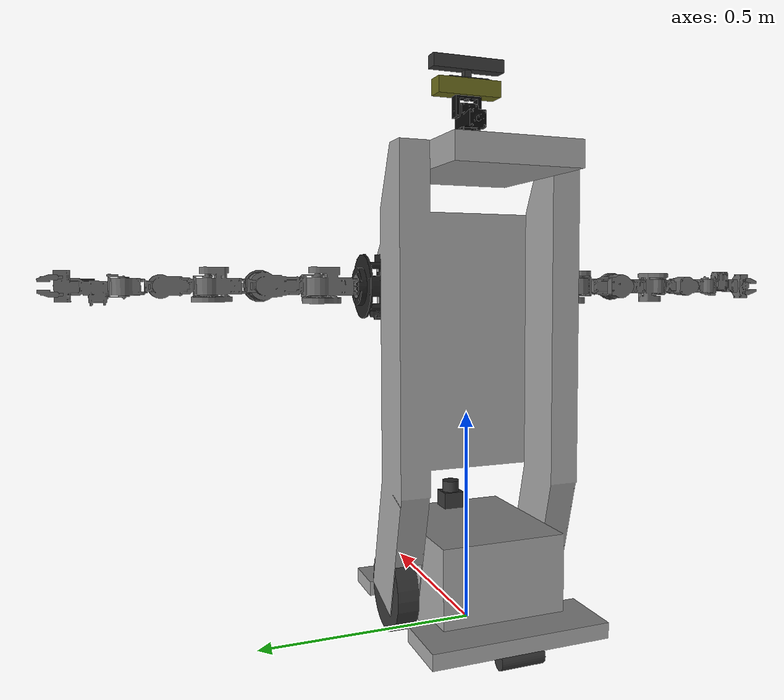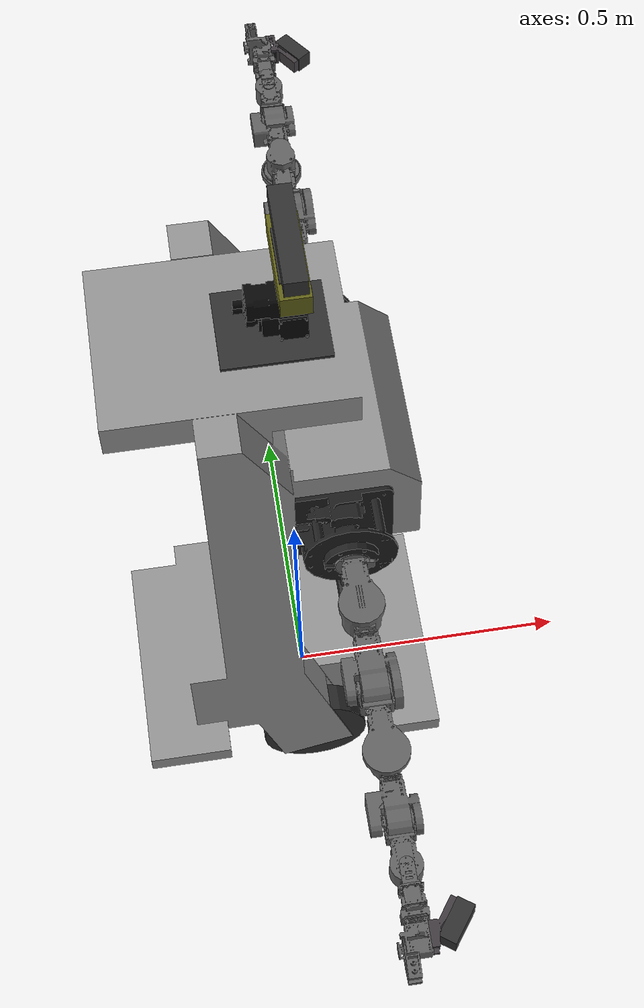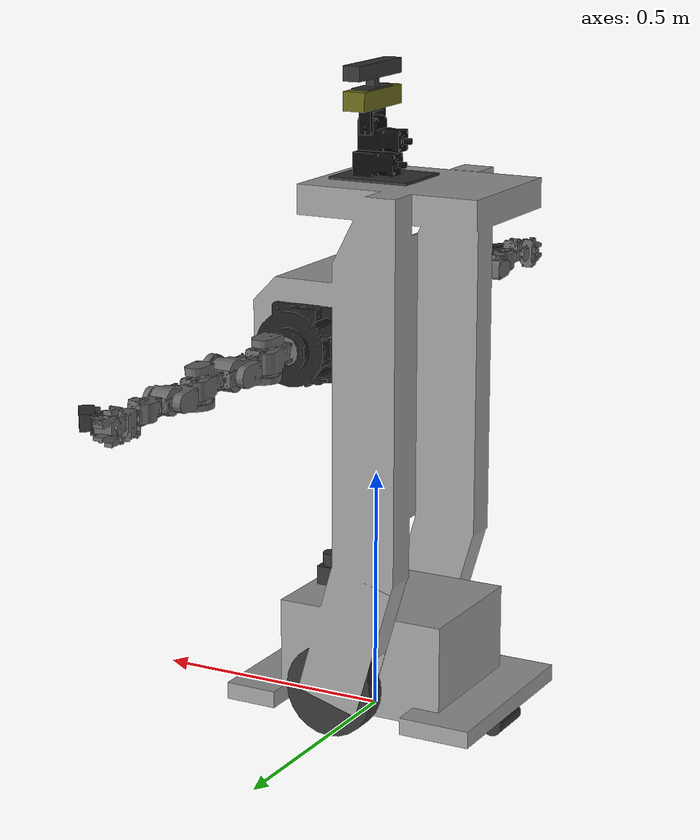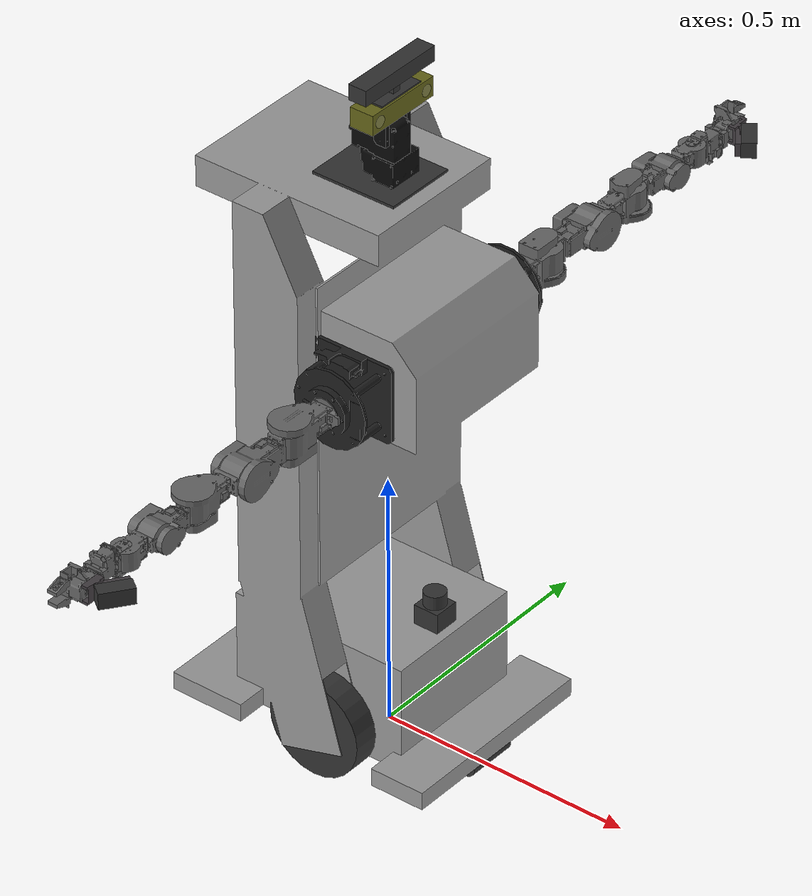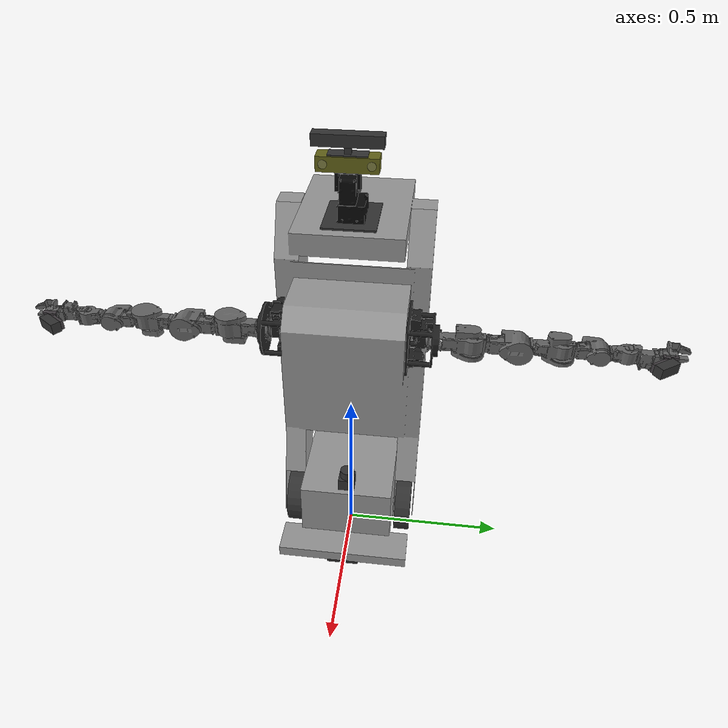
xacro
<?xml version="1.0"?>
<robot xmlns:xacro="http://www.ros.org/wiki/xacro" name="phoebe">
  <xacro:include filename="$(find cyton_gamma_1500_description)/urdf/cyton_gamma_1500_macros.urdf.xacro" />
  <xacro:include filename="$(find dp_ptu_46_description)/dp_ptu_46_macros.urdf.xacro" />
  <xacro:include filename="$(find phoebe_description)/urdf/phoebe.gazebo" />

  <link name="base_footprint"/>

  <joint name="base_joint" type="fixed">
      <origin xyz="0 0 0.0012" rpy="0 0 0" />
      <parent link="base_footprint"/>
      <child link="base_link" />
  </joint>

  <link name="base_link">
    <inertial>
      <origin rpy="0 0 0" xyz="-0.040872 0.0 0.56"/>
      <mass value="12"/>
      <!-- inretia tensor for solid cuboid: m=12, h=1.12, d=0.49, w=0.41 -->
      <inertia ixx="1.4225" ixy="0" ixz="0" iyy="1.4945" iyz="0" izz="0.4082"/>
    </inertial>
	<visual>
      <origin xyz="0 0 0" rpy="0 0 0"/>
      <geometry>
        <mesh filename="package://phoebe_description/meshes/phoebe.dae"/>
      </geometry>
    </visual>
    <collision>
      <origin xyz="0 0 0" rpy="0 0 0"/>
      <geometry>
        <mesh filename="package://phoebe_description/meshes/phoebe.dae"/>
      </geometry>
    </collision>
  </link>

  <joint name="wheel_rear_joint" type="continuous">
    <parent link="base_link"/>
    <child link="wheel_rear"/>
    <origin rpy="0 0 0" xyz="-0.29 0.0 0.020"/>
	<axis rpy="0 0 0" xyz="0 1 0"/>
    <limit effort="10000" velocity="1000"/>
    <joint_properties damping="1.0" friction="1.0"/>

  </joint>

  <link name="wheel_rear">
    <inertial>
      <!--origin rpy="0 0 0" xyz="0 0 0"/-->
	  <origin rpy="0 1.5708 1.5708" xyz="0 0 0"/>
      <mass value="0.25"/>
      <!-- inretia tensor for solid cylinder: m=0.5, h=0.05, r=0.095 -->
      <inertia ixx="1.232291667e-03" ixy="0" ixz="0" iyy="1.232291667e-03" iyz="0" izz="2.25625e-03"/>
    </inertial>
    <visual>
      <origin rpy="0 1.5707 1.5707" xyz="0 0 0"/>
      <geometry>
        <cylinder length="0.1" radius="0.02"/>
      </geometry>
      <material name="blackish">
        <color rgba="0.2 0.2 0.2 1"/>
      </material>
    </visual>
    <collision>
      <origin rpy="0 1.5707 1.5707" xyz="0 0 0"/>
      <geometry>
        <cylinder length="0.1" radius="0.02"/>
      </geometry>
    </collision>
  </link>

  <joint name="wheel_front_joint" type="continuous">
    <parent link="base_link"/>
    <child link="wheel_front"/>
    <origin rpy="0 0 0" xyz="0.206 0 0.020"/>
	<axis rpy="0 0 0" xyz="0 1 0"/>
    <limit effort="10000" velocity="1000"/>
    <joint_properties damping="1.0" friction="1.0"/>
  </joint>

  <link name="wheel_front">
    <inertial>
      <!--origin rpy="0 0 0" xyz="0 0 0"/-->
	  <origin rpy="0 1.5708 1.5708" xyz="0 0 0"/>
      <mass value="0.25"/>

      <inertia ixx="1.232291667e-03" ixy="0" ixz="0" iyy="1.232291667e-03" iyz="0" izz="2.25625e-03"/>
    </inertial>
    <visual>
     <origin rpy="0 1.5707 1.5707" xyz="0 0 0"/>
     <geometry>
        <cylinder length="0.1" radius="0.02"/>
      </geometry>
      <material name="blackish"/>
    </visual>
    <collision>
      <origin rpy="0 1.5707 1.5707" xyz="0 0 0"/>
      <geometry>
        <cylinder length="0.1" radius="0.02"/>
      </geometry>
    </collision>
  </link>

  <joint name="wheel_left_joint" type="continuous">
    <parent link="base_link"/>
    <child link="wheel_left"/>
	<!--origin rpy="1.570796 0 0" xyz="0.0 0.18 0.095"/-->
    <origin rpy="0 0 0" xyz="0.0 0.18 0.095"/>
    <!--axis xyz="0 0 1"/-->
	<axis xyz="0 1 0"/>
	<limit effort="10000" velocity="1000"/>
    <joint_properties damping="1.0" friction="1.0"/>
  </joint>

  <link name="wheel_left">
    <inertial>
      <!--origin rpy="0 0 0" xyz="0 0 0"/-->
	  <origin rpy="0 1.5708 1.5708" xyz="0 0 0"/>
      <mass value="0.5"/>
      <!-- inretia tensor for solid cylinder: m=0.5, h=0.05, r=0.095 -->
      <inertia ixx="1.232291667e-03" ixy="0" ixz="0" iyy="1.232291667e-03" iyz="0" izz="2.25625e-03"/>
    </inertial>
    <visual>
      <!--origin rpy="0 0 0" xyz="0 0 0"/-->
	  <origin rpy="0 1.5708 1.5708" xyz="0 0 0"/>
      <geometry>
        <cylinder length="0.05" radius="0.095"/>
      </geometry>
      <material name="blackish">
        <color rgba="0.2 0.2 0.2 1"/>
      </material>
    </visual>
    <collision>
      <!--origin rpy="0 0 0" xyz="0 0 0"/-->
	  <origin rpy="0 1.5707 1.5707" xyz="0 0 0"/>
      <geometry>
        <cylinder length="0.05" radius="0.095"/>
      </geometry>
    </collision>
  </link>

  <joint name="wheel_right_joint" type="continuous">
    <parent link="base_link"/>
    <child link="wheel_right"/>
    <!--origin rpy="1.570796 0 0" xyz="0.0 -0.18 0.095"/-->
	<origin rpy="0 0 0" xyz="0.0 -0.18 0.095"/>
    <!--axis xyz="0 0 1"/-->
	<axis xyz="0 1 0"/>
	<limit effort="10000" velocity="1000"/>
    <joint_properties damping="1.0" friction="1.0"/>
  </joint>
  <link name="wheel_right">
    <inertial>
      <!--origin rpy="0 0 0" xyz="0 0 0"/-->
	  <origin rpy="0 1.5708 1.5708" xyz="0 0 0"/>
      <mass value="0.5"/>
      <!-- inretia tensor for solid cylinder: m=0.5, h=0.05, r=0.095 -->
      <inertia ixx="1.232291667e-03" ixy="0" ixz="0" iyy="1.232291667e-03" iyz="0" izz="2.25625e-03"/>
    </inertial>
    <visual>
      <!--origin rpy="0 0 0" xyz="0 0 0"/-->
	  <origin rpy="0 1.5708 1.5708" xyz="0 0 0"/>
      <geometry>
        <cylinder length="0.05" radius="0.095"/>
      </geometry>
      <material name="blackish"/>
    </visual>
    <collision>
      <!--origin rpy="0 0 0" xyz="0 0 0"/-->
	  <origin rpy="0 1.5708 1.5708" xyz="0 0 0"/>
      <geometry>
        <cylinder length="0.05" radius="0.095"/>
      </geometry>
    </collision>
  </link>

  <!-- Cyton Gamma 1500 models -->
  <!-- Right arm -->
  <joint name="right_arm_joint" type="fixed">
    <parent link="base_link" />
    <child link="right_arm_base_link" />
    <origin xyz="0.067 -0.162 0.8" rpy="1.5708 -1.5708 0" />
  </joint>
 <xacro:cyton_gamma_1500 prefix="right_arm_" virtual_ee="true" />

  <!-- Left arm -->
  <joint name="left_arm_joint" type="fixed">
    <parent link="base_link" />
    <child link="left_arm_base_link" />
    <origin xyz="0.067 0.162 0.8" rpy="-1.5708 1.5708 0" />
  </joint>
  <xacro:cyton_gamma_1500 prefix="left_arm_" virtual_ee="true" />

  <!-- PTU -->
  <joint name="ptu_joint" type="fixed">
    <parent link="base_link" />
    <child link="ptu_base_plate_link" />
    <origin xyz="0.02 0 1.1075" rpy="0 0 0" />
  </joint>
  <xacro:dp_ptu_46 prefix="" plate="true" thickness="0.005" />

  <!-- Hokuyo lidar -->
  <joint name="hokuyo_base_joint" type="fixed">
    <parent link="base_link" />
    <child link="hokuyo_link" />
    <origin xyz="0.1 0 0.3" rpy="0 0 0" />
  </joint>

  <link name="hokuyo_link">
    <inertial>
      <origin rpy="0 0 0" xyz="0 0 -0.02"/>
      <mass value="0.13"/>
      <!-- inretia tensor for solid cuboid: m=0.13, h=0.07, w=0.05, d=0.05 -->
      <inertia ixx="8.0167e-05" ixy="0" ixz="0" iyy="8.0167e-05" iyz="0" izz="5.4167e-05"/>
    </inertial>
	<visual>
      <origin xyz="0 0 0" rpy="0 0 0"/>
      <geometry>
        <cylinder length="0.0265" radius="0.021" />
      </geometry>
      <material name="blackish" />
    </visual>
    <visual>
      <origin xyz="0 0 -0.034" rpy="0 0 0"/>
      <geometry>
        <box size="0.05 0.05 0.041"/>
      </geometry>
      <material name="blackish" />
    </visual>
    <collision>
      <origin xyz="0 0 0" rpy="0 0 0"/>
      <geometry>
        <cylinder length="0.0265" radius="0.021" />
      </geometry>
    </collision>
    <collision>
      <origin xyz="0 0 -0.047" rpy="0 0 0"/>
      <geometry>
        <box size="0.05 0.05 0.041"/>
      </geometry>
    </collision>
  </link>

  <!-- Bumblebee 2 -->
  <joint name="bumblebee_joint" type="fixed">
    <parent link="ptu_mount_link" />
    <child link="bumblebee_link" />
    <origin xyz="0 0 0.058" rpy="0 0 0" />
  </joint>

  <link name="bumblebee_link">
    <inertial>
      <origin rpy="0 0 0" xyz="0 0 0"/>
      <mass value="0.342"/>
      <!-- inretia tensor for solid cuboid: m=0.342, h=0.036, w=0.157, d=0.0474 -->
      <inertia ixx="7.3943e-04" ixy="0" ixz="0" iyy="1.0096e-04" iyz="0" izz="7.6653e-04"/>
    </inertial>
	<visual>
      <origin xyz="0 0 0" rpy="0 0 0"/>
      <geometry>
        <box size="0.047 0.157 0.038"/>
      </geometry>
      <material name="golden">
        <color rgba="0.4 0.4 0.1 1" />
      </material>
    </visual>
  </link>

  <joint name="bumblebee_cameras_joint" type="fixed">
    <parent link="bumblebee_link" />
    <child link="bumblebee_cameras_link" />
    <origin xyz="0 0 0.0" rpy="0 0 0" />
  </joint>

  <link name="bumblebee_cameras_link">
    <visual>
      <origin xyz="0.024 0.06 0" rpy="0 1.5708 0"/>
      <geometry>
        <cylinder length="0.001" radius="0.011" />
      </geometry>
      <material name="glass">
        <color rgba="1 1 1 0.2" />
      </material>
    </visual>
    <visual>
      <origin xyz="0.024 -0.06 0" rpy="0 1.5708 0"/>
      <geometry>
        <cylinder length="0.001" radius="0.011" />
      </geometry>
      <material name="glass" />
    </visual>
  </link>

  <!-- Asus Xtion Pro Live -->
  <joint name="xtion_joint" type="fixed">
    <parent link="bumblebee_link" />
    <child link="xtion_link" />
    <origin xyz="0 0 0.055" rpy="0 0 0" />
  </joint>

  <link name="xtion_link">
    <inertial>
      <origin rpy="0 0 0" xyz="0 0 0"/>
      <mass value="0.54"/>
      <!-- inretia tensor for solid cuboid: m=0.54, h=0.034, w=0.18, d=0.034 -->
      <inertia ixx="1.51e-03" ixy="0" ixz="0" iyy="1.0404e-04" iyz="0" izz="1.51e-03"/>
    </inertial>
	<visual>
      <origin xyz="0 0 0" rpy="0 0 0"/>
      <geometry>
        <box size="0.036 0.178 0.03"/>
      </geometry>
      <material name="blackish" />
    </visual>
    <visual>
      <origin xyz="0 0 -0.025" rpy="0 0 0"/>
      <geometry>
        <box size="0.02 0.017 0.02"/>
      </geometry>
      <material name="blackish" />
    </visual>
    <visual>
      <origin xyz="0 0 -0.035" rpy="0 0 0"/>
      <geometry>
        <box size="0.04 0.1 0.004"/>
      </geometry>
      <material name="blackish" />
    </visual>
  </link>

  <joint name = "xtion_optical_frame_joint" type="fixed">
    <parent link="xtion_link"/>
    <child link="xtion_optical_frame"/>
    <origin rpy="-1.57 0 -1.57" xyz="0 0 0"/>
  </joint>

  <link name="xtion_optical_frame" >
 </link>

  <joint name = "left_optical_frame_joint" type="fixed">
    <parent link="left_arm_camera"/>
    <child link="left_optical_frame"/>
    <origin rpy="0 -1.5708  0" xyz="0 0 0"/>
  </joint>

  <link name="left_optical_frame" >
 </link>

  <joint name = "right_optical_frame_joint" type="fixed">
    <parent link="right_arm_camera"/>
    <child link="right_optical_frame"/>
    <origin rpy="0  -1.5708 3.14" xyz="0 0 0"/>
  </joint>

  <link name="right_optical_frame" >
 </link>

</robot>

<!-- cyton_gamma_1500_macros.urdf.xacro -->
<robot xmlns:xacro="http://www.ros.org/wiki/xacro" name="cyton_gamma_1500">

  <xacro:macro name="base_footprint" params="prefix">
    <link name="base_footprint">
      <visual>
        <origin xyz="0 0 0" rpy="0 0 0"/>
        <geometry>
          <sphere radius="0.001" />
        </geometry>
        <material name="white">
          <color rgba="1 1 1 1"/>
        </material>
      </visual>
    </link>

    <joint name="base_joint" type="fixed">
      <parent link="base_footprint" />
      <child link="${prefix}base_link" />
      <origin xyz="0.0 0.0 0.0" rpy="0 0 0" />
    </joint>
  </xacro:macro>

  <xacro:macro name="cyton_gamma_1500" params="prefix virtual_ee">
    <link name="${prefix}base_link">
      <visual>
        <origin xyz="0 0 0" rpy="0 0 0"/>
        <geometry>
          <mesh filename="package://cyton_gamma_1500_description/meshes/base.dae"/>
        </geometry>
      </visual>

	  <inertial>
		  <origin rpy="0 0 0" xyz="0.0 0 0"/>
		  <mass value="0.478571"/>
		  <!-- inretia tensor for solid cuboid: m=0.478571, w=0.177, h=0.074, d=0.150 -->
		  <inertia ixx="1.47e-03" ixy="0" ixz="0" iyy="2.15e-03" iyz="0" izz="1.12e-03"/>
	  </inertial>
      <collision>
        <!--origin xyz="0 0.0115 0.047"/-->
		<origin xyz="0 0 0" rpy="0 0 0"/>
        <geometry>
		  <!--box size="0.154 0.177 0.094"/-->
          <box size="0.154 0.16 0.075"/>
        </geometry>
      </collision>
    </link>

    <joint name="${prefix}shoulder_roll_joint" type="revolute">
      <parent link="${prefix}base_link" />
      <child link="${prefix}shoulder_roll" />
      <origin xyz="0 0 0.05315" rpy="0 0 0" />
      <limit lower="-2.618" upper="2.618" effort="100.0" velocity="1.0" />
      <axis xyz="0 0 1" />
    </joint>

    <link name="${prefix}shoulder_roll">
      <visual>
        <origin xyz="0 0 0" rpy="1.5708 0 0.384"/>
        <geometry>
          <mesh filename="package://cyton_gamma_1500_description/meshes/shoulder_roll.dae"/>
        </geometry>
      </visual>
      <collision>
        <origin xyz="0.0 0.0 0.0"/>
        <geometry>
          <!--box size="0.09829 0.18143 0.08392"/-->
		  <box size="0.068 0.10 0.065"/>
        </geometry>
      </collision>
	  <inertial>
		  <origin rpy="0 0 0" xyz="0 0 0.12"/>
		  <mass value="0.468571"/>
		  <!-- inretia tensor for solid cylinder: m=0.468571, h=0.09248, r=0.044737 -->
		  <inertia ixx="4.7e-04" ixy="0" ixz="0" iyy="5.7e-04" iyz="0" izz="5.7e-04"/>
       </inertial>

    </link>

    <joint name="${prefix}shoulder_pitch_joint" type="revolute">
      <parent link="${prefix}shoulder_roll" />
      <child link="${prefix}shoulder_pitch" />
      <origin xyz="0.0205 0 0.12435" rpy="0 0 0" />
      <limit lower="-1.8326" upper="1.8326" effort="100.0" velocity="1.0" />
      <axis xyz="1 0 0" />
    </joint>

	<transmission name="${prefix}tran1">
    <type>transmission_interface/SimpleTransmission</type>
    <joint name="${prefix}shoulder_roll_joint">
      <hardwareInterface>hardware_interface/PositionJointInterface</hardwareInterface>
    </joint>
    <actuator name="${prefix}motor1">
      <hardwareInterface>hardware_interface/PositionJointInterface</hardwareInterface>
    </actuator>
  </transmission>

    <link name="${prefix}shoulder_pitch">
      <visual>
        <origin xyz="0 0 0" rpy="1.5708 0 0" />
        <geometry>
          <mesh filename="package://cyton_gamma_1500_description/meshes/shoulder_pitch.dae"/>
        </geometry>
      </visual>
      <collision>
      <origin xyz="-0.02 0.0 0.0"/>
      <geometry>
	<sphere radius="0.055"/>
        <!--box size="0.098 0.08 0.11"/-->
      </geometry>
    </collision>
    <inertial>
      <!--origin rpy="0 0 0" xyz="-0.0214 0 0.117"/-->
	  <origin rpy="0 0 0" xyz="0 0 0"/>
      <mass value="0.4285714"/>
      <!-- inretia tensor for solid cylinder: m=0.4285714, h=0.09248, r=0.04204 -->
      <inertia ixx="4.9e-04" ixy="0" ixz="0" iyy="3.8e-04" iyz="0" izz="4.9e-04"/>
    </inertial>
    </link>

    <joint name="${prefix}shoulder_yaw_joint" type="revolute">
      <parent link="${prefix}shoulder_pitch" />
      <child link="${prefix}shoulder_yaw" />
      <origin xyz="-0.0215 -0.0205 0.1255" rpy="0 0 0" />
      <limit lower="-1.8326" upper="1.8326" effort="100.0" velocity="1.0" />
      <axis xyz="0 -1 0" />
    </joint>

	<transmission name="${prefix}tran2">
      <type>transmission_interface/SimpleTransmission</type>
      <joint name="${prefix}shoulder_pitch_joint">
        <hardwareInterface>hardware_interface/PositionJointInterface</hardwareInterface>
      </joint>
      <actuator name="${prefix}motor2">
        <hardwareInterface>hardware_interface/PositionJointInterface</hardwareInterface>
      </actuator>
    </transmission>

    <link name="${prefix}shoulder_yaw">
      <visual>
        <origin xyz="0 0 0.0" rpy="1.5708 0 -1.5708" />
        <geometry>
          <mesh filename="package://cyton_gamma_1500_description/meshes/shoulder_yaw.dae"/>
        </geometry>
      </visual>
      <collision>
		<origin xyz=" -0.002 0.02 -0.01"/>
		<geometry>
			<sphere radius="0.055"/>
			<!--box size="0.08 0.1 0.11"/-->
		</geometry>
	  </collision>
      <inertial>
		  <!--origin rpy="0 0 0" xyz="-0.002 0.021 0.1135"/-->
		  <origin rpy="0 0 0" xyz="0 0 0"/>
		  <mass value="0.408571"/>
		  <!-- inretia tensor for solid cylinder: m=0.408571, h=0.084081, r=0.036785 -->
		  <inertia ixx="2.8e-04" ixy="0" ixz="0" iyy="3.8e-04" iyz="0" izz="3.8e-04"/>
       </inertial>
    </link>

	<transmission name="${prefix}tran3">
    <type>transmission_interface/SimpleTransmission</type>
    <joint name="${prefix}shoulder_yaw_joint">
      <hardwareInterface>hardware_interface/PositionJointInterface</hardwareInterface>
    </joint>
    <actuator name="${prefix}motor3">
      <hardwareInterface>hardware_interface/PositionJointInterface</hardwareInterface>
    </actuator>
  </transmission>

    <joint name="${prefix}elbow_pitch_joint" type="revolute">
      <parent link="${prefix}shoulder_yaw" />
      <child link="${prefix}elbow_pitch" />
      <origin xyz="0.018 0.0206 0.1158" rpy="0 0 0" />
      <limit lower="-1.8326" upper="1.8326" effort="100.0" velocity="1.0" />
      <axis xyz="1 0 0" />
    </joint>

    <link name="${prefix}elbow_pitch">
      <visual>
        <origin xyz="0 0 0" rpy="1.5708 0 3.1416" />
        <geometry>
          <mesh filename="package://cyton_gamma_1500_description/meshes/elbow_pitch.dae"/>
        </geometry>
      </visual>
      <collision>
      <origin xyz="-0.022 0.0 -0.006"/>
      <geometry>
		<sphere radius="0.055"/>
        <!--box size="0.09 0.1 0.11"/-->
      </geometry>
      </collision>
      <inertial>
		  <origin rpy="0 0 0" xyz="0 0 0"/>
		  <!--origin rpy="0 0 0" xyz="-0.0176 0.001 0.095"/-->
		  <mass value="0.388671"/>
		  <!-- inretia tensor for solid cylinder: m=0.388671, h=0.06705, r=0.028975 -->
		  <inertia ixx="2.3e-04" ixy="0" ixz="0" iyy="1.6e-04" iyz="0" izz="2.3e-04"/>
       </inertial>
    </link>

	<transmission name="${prefix}tran4">
		<type>transmission_interface/SimpleTransmission</type>
		<joint name="${prefix}elbow_pitch_joint">
			<hardwareInterface>hardware_interface/PositionJointInterface</hardwareInterface>
		</joint>
		<actuator name="${prefix}motor4">
			<hardwareInterface>hardware_interface/PositionJointInterface</hardwareInterface>
		</actuator>
	</transmission>

    <joint name="${prefix}elbow_yaw_joint" type="revolute">
      <parent link="${prefix}elbow_pitch" />
      <child link="${prefix}elbow_yaw" />
      <origin xyz="-0.0171 -0.018 0.09746" rpy="0 0 0" />
      <limit lower="-1.8326" upper="1.8326" effort="100.0" velocity="1.0" />
      <axis xyz="0 -1 0" />
    </joint>

    <link name="${prefix}elbow_yaw">
      <visual>
        <origin xyz="0 0 0" rpy="1.5708 0 1.5708" />
        <geometry>
          <mesh filename="package://cyton_gamma_1500_description/meshes/elbow_yaw.dae"/>
        </geometry>
      </visual>
      <collision>
		<origin xyz="0.0 0.025 0.0"/>
		<geometry>
			<sphere radius="0.05"/>
		</geometry>
		</collision>
		<inertial>
		  <!--origin rpy="0 0 0" xyz="0 0.018 0.073"/-->
		  <origin rpy="0 0 0" xyz="0 0 0"/>
		  <mass value="0.368871"/>
		  <!-- inretia tensor for solid cylinder: m=0.368871, h=0.043602, r=0.024071 -->
		  <inertia ixx="1.0686e-04" ixy="0" ixz="0" iyy="1.1187e-04" iyz="0" izz="1.1187e-04"/>
		</inertial>
    </link>

	<transmission name="${prefix}tran5">
    <type>transmission_interface/SimpleTransmission</type>
    <joint name="${prefix}elbow_yaw_joint">
      <hardwareInterface>hardware_interface/PositionJointInterface</hardwareInterface>
    </joint>
    <actuator name="${prefix}motor5">
      <hardwareInterface>hardware_interface/PositionJointInterface</hardwareInterface>
    </actuator>
  </transmission>

    <joint name="${prefix}wrist_pitch_joint" type="revolute">
      <parent link="${prefix}elbow_yaw" />
      <child link="${prefix}wrist_pitch" />
      <origin xyz="0.02626 0.018 0.0718" rpy="0 0 0" />
      <limit lower="-1.8326" upper="1.8326" effort="100.0" velocity="1.0" />
      <axis xyz="-1 0 0" />
    </joint>

    <link name="${prefix}wrist_pitch">
      <visual>
        <origin xyz="0 0 0" rpy="1.5708 0 1.5708" />
        <geometry>
          <mesh filename="package://cyton_gamma_1500_description/meshes/wrist_pitch.dae"/>
        </geometry>
      </visual>
      <collision>
		<origin xyz="-0.02 0.0 0.0"/>
		<geometry>
			<box size="0.07 0.06 0.11"/>
		</geometry>
		</collision>
		<inertial>
		  <!--origin rpy="0 0 0" xyz="-0.027 -0.0005 0.028"/-->
		  <origin rpy="0 0 0" xyz="0 0 0"/>
	  <mass value="0.2"/>
		<!-- inretia tensor for solid cuboid: m=0.008, h=0.045602, w=0.0218, d=0.005 -->
		<inertia ixx="8.337e-06" ixy="0" ixz="0" iyy="3.507e-05" iyz="0" izz="4.258e-05"/>
		</inertial>
    </link>
	<transmission name="${prefix}tran6">
		<type>transmission_interface/SimpleTransmission</type>
		<joint name="${prefix}wrist_pitch_joint">
			<hardwareInterface>hardware_interface/PositionJointInterface</hardwareInterface>
		</joint>
		<actuator name="${prefix}motor6">
			<hardwareInterface>hardware_interface/PositionJointInterface</hardwareInterface>
		</actuator>
    </transmission>

    <joint name="${prefix}wrist_roll_joint" type="revolute">
      <parent link="${prefix}wrist_pitch" />
      <child link="${prefix}wrist_roll" />
      <origin xyz="-0.026255 0 0.051425" rpy="0 0 0" />
      <limit lower="-2.61799" upper="2.61799" effort="100.0" velocity="1.0" />
      <axis xyz="0 0 1" />
    </joint>

    <link name="${prefix}wrist_roll">
      <visual>
        <origin xyz="0 0 0" rpy="3.1416 0 -1.5708" />
        <geometry>
          <mesh filename="package://cyton_gamma_1500_description/meshes/wrist_roll.dae"/>
        </geometry>
      </visual>
      <collision>
		<origin xyz="0.0 0.008 0.04"/>
		<geometry>
			<box size="0.08 0.06 0.08"/>
		</geometry>
	  </collision>
	  <inertial>
		  <!--origin rpy="0 0 0" xyz="0 0 0.029"/-->
		  <origin rpy="0 0 0" xyz="0 0 0"/>
		  <mass value="0.38"/>
		  <!-- inretia tensor for solid cylinder: m=0.38, h=0.095, r=0.027975 -->
		  <inertia ixx="3.6e-04" ixy="0" ixz="0" iyy="3.6e-04" iyz="0" izz="1.487e-04"/>
	  </inertial>
    </link>

	<transmission name="${prefix}tran7">
		<type>transmission_interface/SimpleTransmission</type>
		<joint name="${prefix}wrist_roll_joint">
			<hardwareInterface>hardware_interface/PositionJointInterface</hardwareInterface>
		</joint>
		<actuator name="${prefix}motor7">
			<hardwareInterface>hardware_interface/PositionJointInterface</hardwareInterface>
		</actuator>
	</transmission>

    <joint name="${prefix}gripper_joint" type="prismatic">
      <parent link="${prefix}wrist_roll" />
      <child link="${prefix}gripper_finger1" />
      <origin xyz="-0.01331 0.00485 0.077225" rpy="0 0 0" />
      <limit lower="-0.008" upper="0.008" effort="100.0" velocity="1.0" />
      <axis xyz="1 0 0" />
    </joint>

    <link name="${prefix}gripper_finger1">
      <visual>
        <origin xyz="0 0 0" rpy="0 0 0" />
        <geometry>
          <mesh filename="package://cyton_gamma_1500_description/meshes/gripper_finger1.dae"/>
        </geometry>
      </visual>
      <collision>
        <!--origin xyz="-0.0167 0.0172 0.7254"/-->
		<origin xyz="0.0 0.007 0.02"/>
        <geometry>
			<box size="0.010 0.02 0.031"/>
        </geometry>
      </collision>
	  <inertial>
      <!--origin rpy="0 0 0" xyz="0.0034 0.0096 0.017"/-->
		<origin rpy="0 0 0" xyz="0 0 0"/>
		<mass value="0.035"/>
		<!-- inretia tensor for solid cuboid: m=0.035, h=0.0323, w=0.01469, d=0.0224 -->
		<inertia ixx="4.5064e-06" ixy="0" ixz="0" iyy="3.6723e-06" iyz="0" izz="2.0929e-06"/>
		</inertial>
    </link>

	<transmission name="${prefix}tran8">
		<type>transmission_interface/SimpleTransmission</type>
		<joint name="${prefix}gripper_joint">
			<hardwareInterface>hardware_interface/PositionJointInterface</hardwareInterface>
		</joint>
		<actuator name="${prefix}motor8">
			<hardwareInterface>hardware_interface/PositionJointInterface</hardwareInterface>
		</actuator>
	</transmission>

    <joint name="${prefix}gripper_joint2" type="prismatic">
      <parent link="${prefix}wrist_roll" />
      <child link="${prefix}gripper_finger2" />
      <origin xyz="0.0098 0.00485 0.077225" rpy="0 0 0" />
      <limit lower="-0.008" upper="0.008" effort="100.0" velocity="1.0" />
      <mimic joint="${prefix}gripper_joint" multiplier="-1"/>
      <axis xyz="1 0 0" />
    </joint>

    <link name="${prefix}gripper_finger2">
      <visual>
        <origin xyz="0 0 0" rpy="0 0 0" />
        <geometry>
          <mesh filename="package://cyton_gamma_1500_description/meshes/gripper_finger2.dae"/>
        </geometry>
      </visual>
     <collision>
		<!--origin xyz="0.0132 0.0172 0.7254"/-->
		<origin xyz="0.0 0.007 0.02"/>
		<geometry>
			<box size="0.010 0.020 0.031"/>
		</geometry>
		</collision>
	  <inertial>
		<!--origin rpy="0 0 0" xyz="0.0034 0.0096 0.017"/-->
		<origin rpy="0 0 0" xyz="0 0 0"/>
		<mass value="0.035"/>
		<!-- inretia tensor for solid cuboid: m=0.035, h=0.0323, w=0.01469, d=0.0224 -->
		<inertia ixx="4.5064e-06" ixy="0" ixz="0" iyy="3.6723e-06" iyz="0" izz="2.0929e-06"/>
		</inertial>
    </link>

    <xacro:if value="${virtual_ee}"> <!-- virtual end-effector -->
      <joint name="${prefix}virtual_endeffector_joint" type="fixed">
        <parent link="${prefix}wrist_roll" />
        <child link="${prefix}virtual_endeffector" />
        <origin xyz="-0.002316 0.0079 0.079425" rpy="0 0 0" />
      </joint>

      <link name="${prefix}virtual_endeffector">
        <visual>
          <origin xyz="0 0 0" rpy="0 0 0" />
          <geometry>
            <sphere radius="0.002" />
          </geometry>
          <material name="grey">
            <color rgba="0.7 0.7 0.7 0.8" />
          </material>
        </visual>
		<inertial>
			<origin rpy="0 0 0" xyz="0 0 0"/>
			<mass value="0.0016"/>
			<!-- inretia tensor for solid sphere: m=0.0016, r=0.0022 -->
			<inertia ixx="3.0976e-09" ixy="0" ixz="0" iyy="3.0976e-09" iyz="0" izz="3.0976e-09"/>
		</inertial>
      </link>
    </xacro:if>
	<joint name="${prefix}camera_bracket_joint" type="fixed">
      <parent link="${prefix}wrist_roll" />
      <child link="${prefix}camera_bracket" />
      <origin xyz="-0.0008 -0.028 0.0435" rpy="0 0 0" />
    </joint>

    <link name="${prefix}camera_bracket">
      <visual>
        <origin xyz="0 0 0" rpy="0 0 0" />
        <geometry>
          <mesh filename="package://cyton_gamma_1500_minicam_description/meshes/cam_bracket.dae"/>
        </geometry>
      </visual>
      <collision>
        <origin xyz="0.0 0.0 0.0"/>
        <geometry>
          <box size="0.03512 0.04821 0.07179"/>
        </geometry>
      </collision>
	  <inertial>
		<origin rpy="0.95 0 0" xyz="0 -0.01 -0.012"/>
		<mass value="0.052"/>
		<!-- inretia tensor for solid cuboid: m=0.052, h=0.071, w=0.028, d=0.0086 -->
		<inertia ixx="2.2165e-05" ixy="0" ixz="0" iyy="3.7178e-06" iyz="0" izz="2.5242e-05"/>
    </inertial>
    </link>

    <joint name="${prefix}camera_joint" type="fixed">
      <parent link="${prefix}camera_bracket" />
      <child link="${prefix}camera" />
      <origin xyz="0.0 -0.028 -0.005" rpy="-0.625 0 0" />
    </joint>

    <link name="${prefix}camera">
      <visual>
        <origin xyz="0 0 0" rpy="0 0 0" />
        <geometry>
          <box size="0.031 0.028 0.063" />
        </geometry>
        <material name="blackish">
          <color rgba="0.2 0.2 0.2 1" />
        </material>
      </visual>
      <collision>
        <origin xyz="0 0 0" rpy="0 0 0" />
        <geometry>
          <box size="0.036 0.045 0.063" />
        </geometry>
      </collision>
	  <inertial>
		<origin rpy="0 0 0" xyz="0 0 0"/>
		<mass value="0.085"/>
		<!-- inretia tensor for solid cuboid: m=0.085, h=0.065, w=0.024, d=0.024 -->
		<inertia ixx="3.4007e-05" ixy="0" ixz="0" iyy="3.4007e-05" iyz="0" izz="8.16e-06"/>
    </inertial>

    </link>

  </xacro:macro>

</robot>

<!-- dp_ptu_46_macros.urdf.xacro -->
<robot xmlns:xacro="http://www.ros.org/wiki/xacro" name="dp_ptu_46">

  <xacro:macro name="dp_ptu_46" params="prefix plate thickness">
    <xacro:if value="${plate}">
      <link name="${prefix}ptu_base_plate_link">
        <inertial>
		  <origin rpy="0 0 0" xyz="-0.034 0 0"/>
		  <mass value="0.07"/>
		  <!-- inretia tensor for solid cuboid: m=0.07, h=0.005, w=0.142, d=0.17 -->
		  <inertia ixx="1.1777e-04" ixy="0" ixz="0" iyy="1.6873e-04" iyz="0" izz="2.8621e-04"/>
		</inertial>
		<visual>
          <origin xyz="-0.035 0 ${thickness / 2}" rpy="0 0 0"/>
          <geometry>
            <box size="0.17 0.142 ${thickness}" />
          </geometry>
          <material name="black">
            <color rgba="0.2 0.2 0.2 1"/>
          </material>
        </visual>
      </link>

      <joint name="${prefix}ptu_base_plate_joint" type="fixed">
        <parent link="${prefix}ptu_base_plate_link" />
        <child link="${prefix}ptu_base_link" />
        <origin xyz="0.0 0.0 0.0" rpy="0 0 0" />
      </joint>
    </xacro:if>

    <link name="${prefix}ptu_base_link">
    </link>

    <joint name="${prefix}ptu_base_joint" type="fixed">
      <parent link="${prefix}ptu_base_link" />
      <child link="${prefix}ptu_pan_link" />
      <origin xyz="0.0 0 ${thickness}" rpy="0 0 0" />
    </joint>

    <link name="${prefix}ptu_pan_link">
      <inertial>
		  <origin rpy="0 0 0" xyz="0 0 0.06"/>
		  <mass value="0.13"/>
		  <!-- inretia tensor for solid cuboid: m=0.13, h=0.07, w=0.046, d=0.105 -->
		  <inertia ixx="7.6006e-05" ixy="0" ixz="0" iyy="1.4136e-04" iyz="0" izz="1.7892e-04"/>
	  </inertial>
	  <visual>
        <origin xyz="0 0.0 0.025" rpy="0 0 0"/>
        <geometry>
          <mesh filename="package://dp_ptu_46_description/meshes/pan.dae"/>
        </geometry>
      </visual>
      <collision>
        <origin xyz="0 0.0115 0.047"/>
        <geometry>
          <box size="0.154 0.177 0.094"/>
        </geometry>
      </collision>
    </link>

    <joint name="${prefix}ptu_pan_joint" type="revolute">
      <parent link="${prefix}ptu_base_link" />
      <child link="${prefix}ptu_tilt_link" />
      <origin xyz="-0.00436 -0.0067 ${0.025 + thickness}" rpy="0 0 0" />
      <limit lower="-2.775" upper="2.775" effort="100.0" velocity="1.0" />
      <axis xyz="0 0 1" />
    </joint>

    <link name="${prefix}ptu_tilt_link">
      <inertial>
		  <origin rpy="0 0 0" xyz="-0.03 0 0.05"/>
		  <mass value="0.13"/>
		  <!-- inretia tensor for solid cuboid: m=0.13, h=0.07, w=0.046, d=0.105 -->
		  <inertia ixx="7.6006e-05" ixy="0" ixz="0" iyy="1.7252e-04" iyz="0" izz="1.4136e-04"/>
      </inertial>
	  <visual>
        <origin xyz="0.00436 0.0067 0.0" rpy="0 0 0"/>
        <geometry>
          <mesh filename="package://dp_ptu_46_description/meshes/tilt.dae"/>
        </geometry>
      </visual>
      <collision>
        <origin xyz="0 0.0115 0.047"/>
        <geometry>
          <box size="0.154 0.177 0.094"/>
        </geometry>
      </collision>
    </link>

    <joint name="${prefix}ptu_tilt_joint" type="revolute">
      <parent link="${prefix}ptu_tilt_link" />
      <child link="${prefix}ptu_mount_link" />
      <origin xyz="0.0 0 0.0659" rpy="0 0 0" />
      <limit lower="-1.396" upper="0.541" effort="100.0" velocity="1.0" />
      <axis xyz="0 -1 0" />
    </joint>

    <link name="${prefix}ptu_mount_link">
      <visual>
        <origin xyz="0.00436 0.0067 -0.0659" rpy="0 0 0"/>
        <geometry>
          <mesh filename="package://dp_ptu_46_description/meshes/mount.dae"/>
        </geometry>
      </visual>
      <collision>
        <origin xyz="0 0.0115 0.047"/>
        <geometry>
          <box size="0.154 0.177 0.094"/>
        </geometry>
      </collision>
    </link>
  </xacro:macro>

</robot>
